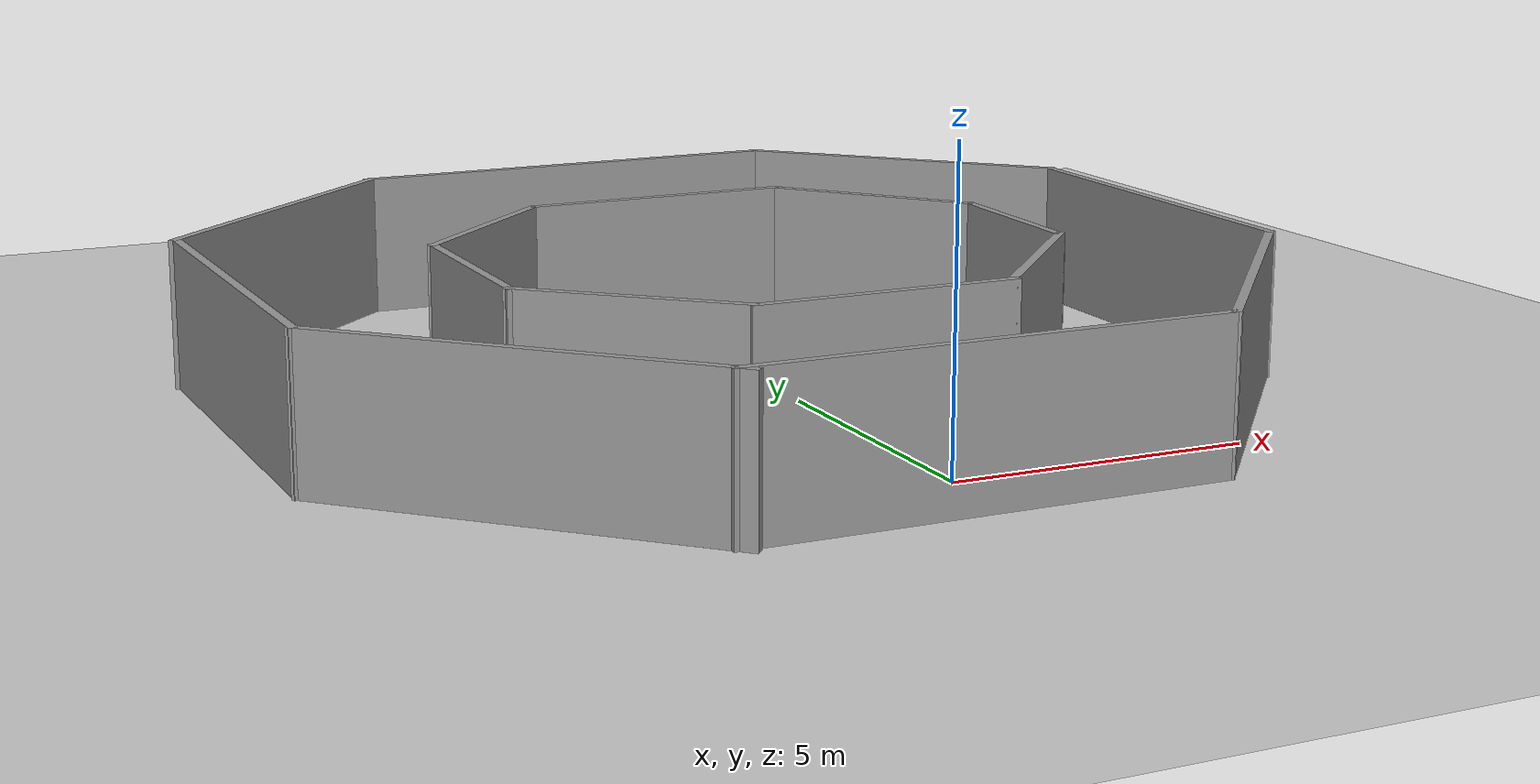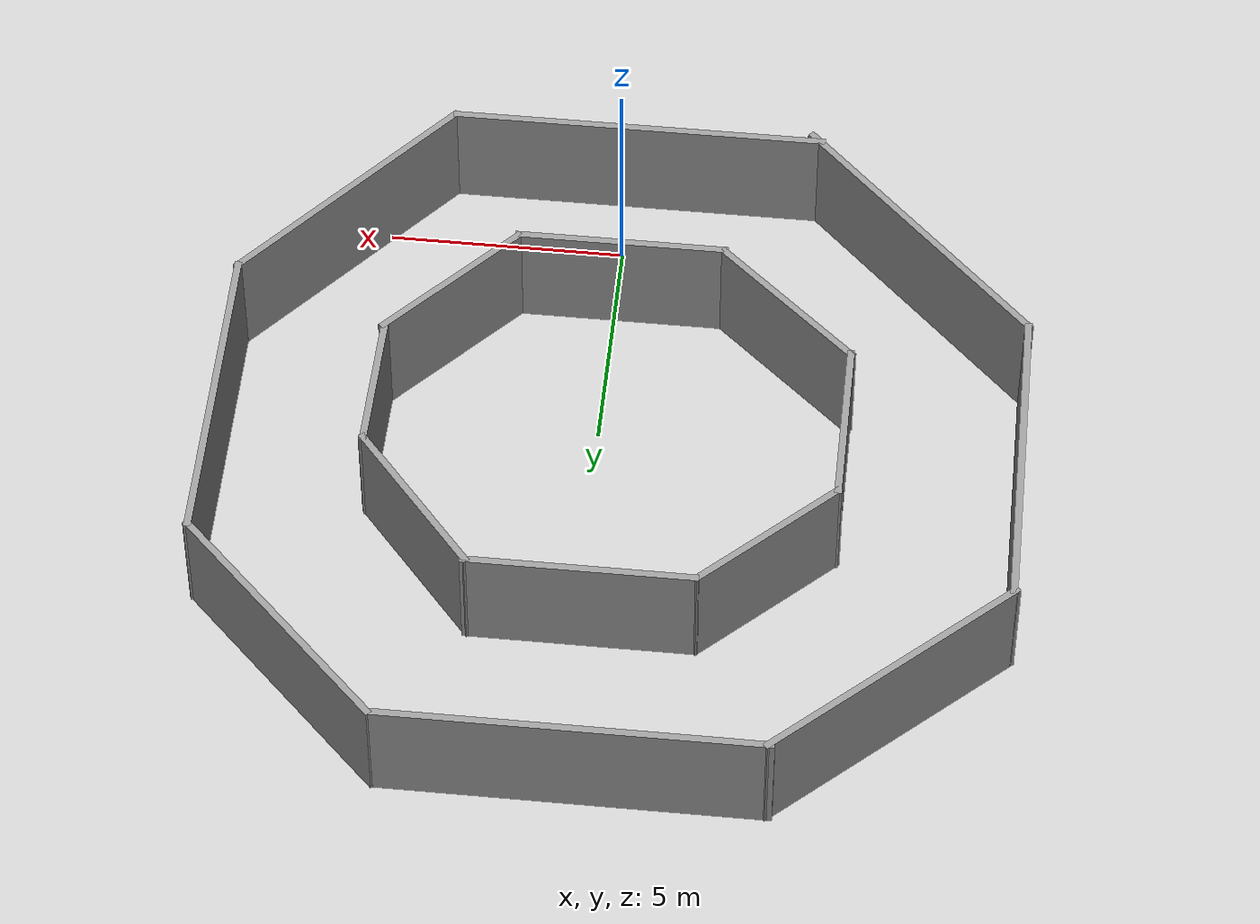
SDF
<sdf version="1.6">
 <world name="default">
  <light name="sun" type="directional">
   <pose>0 0 10 0 -0 0</pose>
   <diffuse>0.8 0.8 0.8 1</diffuse>
   <specular>0.1 0.1 0.1 1</specular>
   <attenuation>
    <range>1000</range>
    <constant>0.9</constant>
    <linear>0.01</linear>
    <quadratic>0.001</quadratic>
   </attenuation>
   <direction>-0.5 0.5 -1</direction>
  </light>
  <model name="ground_plane">
   <static>1</static>
   <link name="link">
    <collision name="collision">
     <geometry><plane><normal>0 0 1</normal><size>100 100</size></plane></geometry>
     <surface><friction><ode><mu>100</mu><mu2>50</mu2></ode></friction></surface>
    </collision>
    <visual name="visual">
     <cast_shadows>0</cast_shadows>
     <geometry><plane><normal>0 0 1</normal><size>100 100</size></plane></geometry>
     <material>
      <script><uri>file://media/materials/scripts/gazebo.material</uri><name>Gazebo/Grey</name></script>
     </material>
    </visual>
   </link>
  </model>
  <gravity>0 0 -9.8</gravity>
  <magnetic_field>6e-06 2.3e-05 -4.2e-05</magnetic_field>
  <atmosphere type="adiabatic"/>
  <physics name="default_physics" default="0" type="ode">
   <max_step_size>0.001</max_step_size>
   <real_time_factor>1</real_time_factor>
   <real_time_update_rate>1000</real_time_update_rate>
  </physics>
  <scene><ambient>0.4 0.4 0.4 1</ambient><background>0.7 0.7 0.7 1</background><shadows>1</shadows></scene>
  <spherical_coordinates>
   <surface_model>EARTH_WGS84</surface_model>
   <latitude_deg>0</latitude_deg>
   <longitude_deg>0</longitude_deg>
   <elevation>0</elevation>
   <heading_deg>0</heading_deg>
  </spherical_coordinates>
  <model name="sekizgen">
   <pose>-0.55803 6.28541 0 0 -0 0</pose>
   <link name="Wall_0">
    <collision name="Wall_0_Collision">
     <geometry><box><size>7.00027 0.15 2.5</size></box></geometry>
     <pose>0 0 1.25 0 -0 0</pose>
    </collision>
    <visual name="Wall_0_Visual">
     <pose>0 0 1.25 0 -0 0</pose>
     <geometry><box><size>7.00027 0.15 2.5</size></box></geometry>
     <material>
      <script><uri>file://media/materials/scripts/gazebo.material</uri><name>Gazebo/Grey</name></script>
      <ambient>1 1 1 1</ambient>
     </material>
    </visual>
    <pose>-8.25343 0.311544 0 0 0 -1.56187</pose>
   </link>
   <link name="Wall_2">
    <collision name="Wall_2_Collision">
     <geometry><box><size>7 0.15 2.5</size></box></geometry>
     <pose>0 0 1.25 0 -0 0</pose>
    </collision>
    <visual name="Wall_2_Visual">
     <pose>0 0 1.25 0 -0 0</pose>
     <geometry><box><size>7 0.15 2.5</size></box></geometry>
     <material>
      <script><uri>file://media/materials/scripts/gazebo.material</uri><name>Gazebo/Grey</name></script>
      <ambient>1 1 1 1</ambient>
     </material>
    </visual>
    <pose>-5.801 -5.5353 0 0 0 -0.785398</pose>
   </link>
   <link name="Wall_23">
    <collision name="Wall_23_Collision">
     <geometry><box><size>4.5 0.15 2.5</size></box></geometry>
     <pose>0 0 1.25 0 -0 0</pose>
    </collision>
    <visual name="Wall_23_Visual">
     <pose>0 0 1.25 0 -0 0</pose>
     <geometry><box><size>4.5 0.15 2.5</size></box></geometry>
     <material>
      <script><uri>file://media/materials/scripts/gazebo.material</uri><name>Gazebo/Grey</name></script>
      <ambient>1 1 1 1</ambient>
     </material>
    </visual>
    <pose>0.395766 -4.54797 0 0 -0 0</pose>
   </link>
   <link name="Wall_25">
    <collision name="Wall_25_Collision">
     <geometry><box><size>3.85168 0.15 2.5</size></box></geometry>
     <pose>0 0 1.25 0 -0 0</pose>
    </collision>
    <visual name="Wall_25_Visual">
     <pose>0 0 1.25 0 -0 0</pose>
     <geometry><box><size>3.85168 0.15 2.5</size></box></geometry>
     <material>
      <script><uri>file://media/materials/scripts/gazebo.material</uri><name>Gazebo/Grey</name></script>
      <ambient>1 1 1 1</ambient>
     </material>
    </visual>
    <pose>3.82488 -3.1562 0 0 -0 0.826314</pose>
   </link>
   <link name="Wall_27">
    <collision name="Wall_27_Collision">
     <geometry><box><size>3.12966 0.15 2.5</size></box></geometry>
     <pose>0 0 1.25 0 -0 0</pose>
    </collision>
    <visual name="Wall_27_Visual">
     <pose>0 0 1.25 0 -0 0</pose>
     <geometry><box><size>3.12966 0.15 2.5</size></box></geometry>
     <material>
      <script><uri>file://media/materials/scripts/gazebo.material</uri><name>Gazebo/Grey</name></script>
      <ambient>1 1 1 1</ambient>
     </material>
    </visual>
    <pose>5.07649 -0.305456 0 0 -0 1.55195</pose>
   </link>
   <link name="Wall_28">
    <collision name="Wall_28_Collision">
     <geometry><box><size>3.92495 0.15 2.5</size></box></geometry>
     <pose>0 0 1.25 0 -0 0</pose>
    </collision>
    <visual name="Wall_28_Visual">
     <pose>0 0 1.25 0 -0 0</pose>
     <geometry><box><size>3.92495 0.15 2.5</size></box></geometry>
     <material>
      <script><uri>file://media/materials/scripts/gazebo.material</uri><name>Gazebo/Grey</name></script>
      <ambient>1 1 1 1</ambient>
     </material>
    </visual>
    <pose>3.88957 2.62853 0 0 -0 2.27014</pose>
   </link>
   <link name="Wall_29">
    <collision name="Wall_29_Collision">
     <geometry><box><size>4.81118 0.15 2.5</size></box></geometry>
     <pose>0 0 1.25 0 -0 0</pose>
    </collision>
    <visual name="Wall_29_Visual">
     <pose>0 0 1.25 0 -0 0</pose>
     <geometry><box><size>4.81118 0.15 2.5</size></box></geometry>
     <material>
      <script><uri>file://media/materials/scripts/gazebo.material</uri><name>Gazebo/Grey</name></script>
      <ambient>1 1 1 1</ambient>
     </material>
    </visual>
    <pose>0.37458 4.07295 0 0 -0 3.14159</pose>
   </link>
   <link name="Wall_30">
    <collision name="Wall_30_Collision">
     <geometry><box><size>3.77381 0.15 2.5</size></box></geometry>
     <pose>0 0 1.25 0 -0 0</pose>
    </collision>
    <visual name="Wall_30_Visual">
     <pose>0 0 1.25 0 -0 0</pose>
     <geometry><box><size>3.77381 0.15 2.5</size></box></geometry>
     <material>
      <script><uri>file://media/materials/scripts/gazebo.material</uri><name>Gazebo/Grey</name></script>
      <ambient>1 1 1 1</ambient>
     </material>
    </visual>
    <pose>-3.3019 2.82675 0 0 0 -2.38316</pose>
   </link>
   <link name="Wall_31">
    <collision name="Wall_31_Collision">
     <geometry><box><size>3.75 0.15 2.5</size></box></geometry>
     <pose>0 0 1.25 0 -0 0</pose>
    </collision>
    <visual name="Wall_31_Visual">
     <pose>0 0 1.25 0 -0 0</pose>
     <geometry><box><size>3.75 0.15 2.5</size></box></geometry>
     <material>
      <script><uri>file://media/materials/scripts/gazebo.material</uri><name>Gazebo/Grey</name></script>
      <ambient>1 1 1 1</ambient>
     </material>
    </visual>
    <pose>-4.61719 -0.219446 0 0 0 -1.5708</pose>
   </link>
   <link name="Wall_32">
    <collision name="Wall_32_Collision">
     <geometry><box><size>3.95098 0.15 2.5</size></box></geometry>
     <pose>0 0 1.25 0 -0 0</pose>
    </collision>
    <visual name="Wall_32_Visual">
     <pose>0 0 1.25 0 -0 0</pose>
     <geometry><box><size>3.95098 0.15 2.5</size></box></geometry>
     <material>
      <script><uri>file://media/materials/scripts/gazebo.material</uri><name>Gazebo/Grey</name></script>
      <ambient>1 1 1 1</ambient>
     </material>
    </visual>
    <pose>-3.19821 -3.25312 0 0 0 -0.727801</pose>
   </link>
   <link name="Wall_4">
    <collision name="Wall_4_Collision">
     <geometry><box><size>6.38533 0.15 2.5</size></box></geometry>
     <pose>0 0 1.25 0 -0 0</pose>
    </collision>
    <visual name="Wall_4_Visual">
     <pose>0 0 1.25 0 -0 0</pose>
     <geometry><box><size>6.38533 0.15 2.5</size></box></geometry>
     <material>
      <script><uri>file://media/materials/scripts/gazebo.material</uri><name>Gazebo/Grey</name></script>
      <ambient>1 1 1 1</ambient>
     </material>
    </visual>
    <pose>-6.01973 5.84684 0 0 -0 0.743521</pose>
   </link>
   <link name="Wall_5">
    <collision name="Wall_5_Collision">
     <geometry><box><size>8 0.15 2.5</size></box></geometry>
     <pose>0 0 1.25 0 -0 0</pose>
    </collision>
    <visual name="Wall_5_Visual">
     <pose>0 0 1.25 0 -0 0</pose>
     <geometry><box><size>8 0.15 2.5</size></box></geometry>
     <material>
      <script><uri>file://media/materials/scripts/gazebo.material</uri><name>Gazebo/Grey</name></script>
      <ambient>1 1 1 1</ambient>
     </material>
    </visual>
    <pose>0.138623 7.95714 0 0 -0 0</pose>
   </link>
   <link name="Wall_6">
    <collision name="Wall_6_Collision">
     <geometry><box><size>6.09678 0.15 2.5</size></box></geometry>
     <pose>0 0 1.25 0 -0 0</pose>
    </collision>
    <visual name="Wall_6_Visual">
     <pose>0 0 1.25 0 -0 0</pose>
     <geometry><box><size>6.09678 0.15 2.5</size></box></geometry>
     <material>
      <script><uri>file://media/materials/scripts/gazebo.material</uri><name>Gazebo/Grey</name></script>
      <ambient>1 1 1 1</ambient>
     </material>
    </visual>
    <pose>6.21984 5.84684 0 0 0 -0.789111</pose>
   </link>
   <link name="Wall_7">
    <collision name="Wall_7_Collision">
     <geometry><box><size>7 0.15 2.5</size></box></geometry>
     <pose>0 0 1.25 0 -0 0</pose>
    </collision>
    <visual name="Wall_7_Visual">
     <pose>0 0 1.25 0 -0 0</pose>
     <geometry><box><size>7 0.15 2.5</size></box></geometry>
     <material>
      <script><uri>file://media/materials/scripts/gazebo.material</uri><name>Gazebo/Grey</name></script>
      <ambient>1 1 1 1</ambient>
     </material>
    </visual>
    <pose>8.31452 0.311544 0 0 0 -1.5708</pose>
   </link>
   <link name="Wall_8">
    <collision name="Wall_8_Collision">
     <geometry><box><size>6.31543 0.15 2.5</size></box></geometry>
     <pose>0 0 1.25 0 -0 0</pose>
    </collision>
    <visual name="Wall_8_Visual">
     <pose>0 0 1.25 0 -0 0</pose>
     <geometry><box><size>6.31543 0.15 2.5</size></box></geometry>
     <material>
      <script><uri>file://media/materials/scripts/gazebo.material</uri><name>Gazebo/Grey</name></script>
      <ambient>1 1 1 1</ambient>
     </material>
    </visual>
    <pose>6.30943 -5.45498 0 0 0 -2.27895</pose>
   </link>
   <link name="Wall_9">
    <collision name="Wall_9_Collision">
     <geometry><box><size>8 0.15 2.5</size></box></geometry>
     <pose>0 0 1.25 0 -0 0</pose>
    </collision>
    <visual name="Wall_9_Visual">
     <pose>0 0 1.25 0 -0 0</pose>
     <geometry><box><size>8 0.15 2.5</size></box></geometry>
     <material>
      <script><uri>file://media/materials/scripts/gazebo.material</uri><name>Gazebo/Grey</name></script>
      <ambient>1 1 1 1</ambient>
     </material>
    </visual>
    <pose>0.348742 -7.79651 0 0 -0 3.14159</pose>
   </link>
   <static>1</static>
  </model>
 </world>
</sdf>
